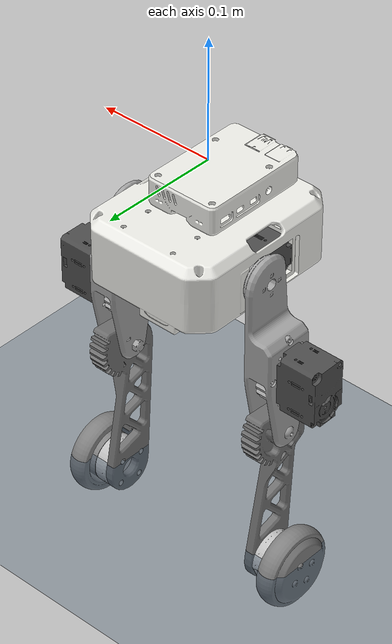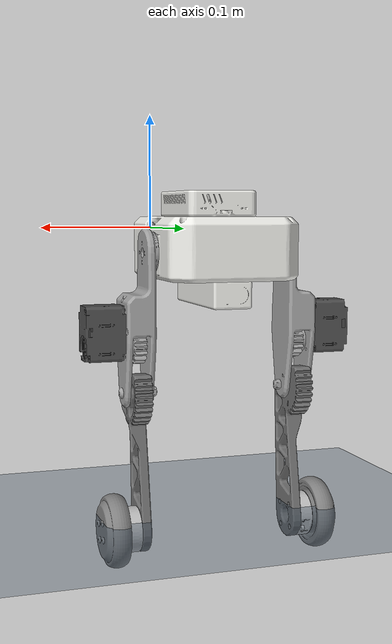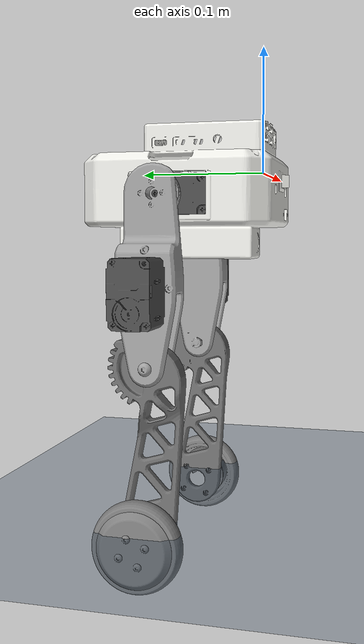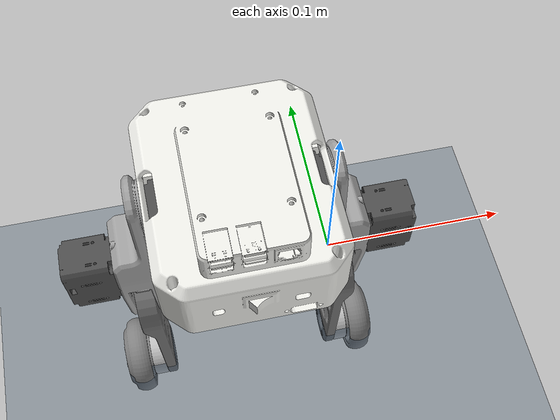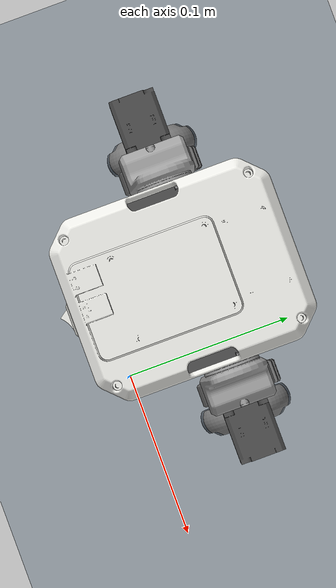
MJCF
<mujoco model="bipedal wheel scene">
  <include file="biped_wheel.xml"/>

  <statistic center="0 0 0.1" extent="0.8"/>

  <visual>
    <headlight diffuse="0.6 0.6 0.6" ambient="0.3 0.3 0.3" specular="0 0 0"/>
    <rgba haze="0.15 0.25 0.35 1"/>
    <global azimuth="-130" elevation="-20"/>
  </visual>

  <asset>
    <texture type="skybox" builtin="gradient" rgb1="0.3 0.5 0.7" rgb2="0 0 0" width="512" height="3072"/>
    <texture type="2d" name="groundplane" builtin="checker" mark="edge" rgb1="0.2 0.3 0.4" rgb2="0.1 0.2 0.3"
      markrgb="0.8 0.8 0.8" width="300" height="300"/>
    <material name="groundplane" texture="groundplane" texuniform="true" texrepeat="5 5" reflectance="0.2"/>
  </asset>

  <worldbody>
    <light pos="0 0 1.5" dir="0 0 -1" directional="true"/>
    <geom name="floor" size="0 0 0.05" type="plane" material="groundplane" pos = "0 0 -0.25"/>
  </worldbody>
</mujoco>

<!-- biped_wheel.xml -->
<mujoco model="bipedal_wheel">
  <compiler angle="radian" meshdir="../meshes/"/>

  <asset>
    <mesh name="base_link" file="base_link.STL"/>
    <mesh name="FixMotor1" file="FixMotor1.STL"/>
    <mesh name="FixMotor3" file="FixMotor3.STL"/>
    <mesh name="R1" file="R1.STL"/>
    <mesh name="FixMotor4" file="FixMotor4.STL"/>
    <mesh name="R2" file="R2.STL"/>
    <mesh name="R3" file="R3.STL"/>
    <mesh name="R4" file="R4.STL"/>
    <mesh name="L1" file="L1.STL"/>
    <mesh name="FixMotor2" file="FixMotor2.STL"/>
    <mesh name="L2" file="L2.STL"/>
    <mesh name="L3" file="L3.STL"/>
    <mesh name="L4" file="L4.STL"/>
  </asset>

  <worldbody>
    <body name="base_link">
      <inertial pos="-0.0430455 0.0467319 -0.0223114" quat="0.49877 0.501535 -0.497211 0.502467" mass="0.9138" diaginertia="0.000918252 0.000530322 0.000437595"/>
      <site name="imu" pos="0 0 0"/>
      <geom type="mesh" contype="0" conaffinity="0" group="1" density="0" rgba="0.92549 0.92549 0.90588 1" mesh="base_link"/>
      <geom type="mesh" rgba="0.92549 0.92549 0.90588 1" mesh="base_link"/>
      <geom pos="-0.092323 0.070189 -0.020612" quat="1 0 0 0" type="mesh" contype="0" conaffinity="0" group="1" density="0" rgba="0.29804 0.29804 0.29804 1" mesh="FixMotor1"/>
      <geom pos="-0.092323 0.070189 -0.020612" quat="1 0 0 0" type="mesh" rgba="0.29804 0.29804 0.29804 1" mesh="FixMotor1"/>
      <geom pos="0.0060771 0.070189 -0.020612" quat="0.707105 0 0.707108 0" type="mesh" contype="0" conaffinity="0" group="1" density="0" rgba="0.29804 0.29804 0.29804 1" mesh="FixMotor3"/>
      <geom pos="0.0060771 0.070189 -0.020612" quat="0.707105 0 0.707108 0" type="mesh" rgba="0.29804 0.29804 0.29804 1" mesh="FixMotor3"/>
      <body name="R1" pos="0.024227 0.059189 -0.020612" quat="0.707105 0 0 0.707108">
        <inertial pos="5.04629e-06 -0.0200582 -0.0616403" quat="0.99416 -0.107403 0.00950229 -0.00442741" mass="0.0988" diaginertia="9.67921e-05 8.19704e-05 3.52418e-05"/>
        <joint name="R1" pos="0 0 0" axis="0 1 0"/>
        <geom type="mesh" contype="0" conaffinity="0" group="1" density="0" rgba="0.62745 0.62745 0.62745 1" mesh="R1"/>
        <geom type="mesh" rgba="0.62745 0.62745 0.62745 1" mesh="R1"/>
        <geom pos="-0.00028834 -0.024 -0.0905" quat="0.707105 -0.707107 0.00112645 0.00112646" type="mesh" contype="0" conaffinity="0" group="1" density="0" rgba="0.29804 0.29804 0.29804 1" mesh="FixMotor4"/>
        <geom pos="-0.00028834 -0.024 -0.0905" quat="0.707105 -0.707107 0.00112645 0.00112646" type="mesh" rgba="0.29804 0.29804 0.29804 1" mesh="FixMotor4"/>
        <body name="R2" pos="-0.00038233 -0.0108 -0.12">
          <inertial pos="0.00180316 0.0014693 -0.094557" quat="0.725466 -0.0175874 0.0102784 0.687956" mass="0.0817" diaginertia="0.000211507 0.00020507 9.25785e-06"/>
          <joint name="R2" pos="0 0 0" axis="0 -1 0"/>
          <geom type="mesh" contype="0" conaffinity="0" group="1" density="0" rgba="0.43137 0.43137 0.43137 1" mesh="R2"/>
          <geom type="mesh" rgba="0.43137 0.43137 0.43137 1" mesh="R2"/>
          <geom pos="0.0024572 -0.0235 -0.11997" quat="0.350331 0.61422 0.614222 0.350333" type="mesh" contype="0" conaffinity="0" group="1" density="0" rgba="0.75294 0.75294 0.75294 1" mesh="R3"/>
          <geom pos="0.0024572 -0.0235 -0.11997" quat="0.350331 0.61422 0.614222 0.350333" type="mesh" rgba="0.75294 0.75294 0.75294 1" mesh="R3"/>
          <body name="R4" pos="0.0024572 -0.0235 -0.11997" quat="1 -2.0924e-06 3.6732e-06 9.01663e-07">
            <inertial pos="-5.703e-12 0.0065924 2.0318e-12" quat="0.707107 0 0 0.707107" mass="0.0545" diaginertia="2.4575e-05 1.3633e-05 1.3633e-05"/>
            <joint name="R4" pos="0 0 0" axis="0 1 0"/>
            <geom type="mesh" contype="0" conaffinity="0" group="1" density="0" rgba="0.50196 0.50196 0.50196 1" mesh="R4"/>
            <geom type="mesh" rgba="0.50196 0.50196 0.50196 1" mesh="R4"/>
          </body>
        </body>
      </body>
      <body name="L1" pos="-0.11057 0.059189 -0.020612" quat="0.707105 0 0 0.707108">
        <inertial pos="-0.000122144 0.020055 -0.0616402" quat="0.994142 0.10746 0.0103632 0.00516376" mass="0.0988" diaginertia="9.68031e-05 8.19712e-05 3.52522e-05"/>
        <joint name="L1" pos="0 0 0" axis="0 1 0"/>
        <geom type="mesh" contype="0" conaffinity="0" group="1" density="0" rgba="0.62745 0.62745 0.62745 1" mesh="L1"/>
        <geom type="mesh" rgba="0.62745 0.62745 0.62745 1" mesh="L1"/>
        <geom pos="-0.00044938 0.024 -0.090499" quat="0.00175297 0.00175816 -0.707106 0.707103" type="mesh" contype="0" conaffinity="0" group="1" density="0" rgba="0.29804 0.29804 0.29804 1" mesh="FixMotor2"/>
        <geom pos="-0.00044938 0.024 -0.090499" quat="0.00175297 0.00175816 -0.707106 0.707103" type="mesh" rgba="0.29804 0.29804 0.29804 1" mesh="FixMotor2"/>
        <body name="L2" pos="-0.00059586 0.0108 -0.12">
          <inertial pos="0.00202464 -0.0014693 -0.0946588" quat="0.690032 0.009635 -0.0182278 0.723485" mass="0.0817" diaginertia="0.00021192 0.000205525 9.21289e-06"/>
          <joint name="L2" pos="0 0 0" axis="0 -1 0"/>
          <geom type="mesh" contype="0" conaffinity="0" group="1" density="0" rgba="0.43137 0.43137 0.43137 1" mesh="L2"/>
          <geom type="mesh" rgba="0.43137 0.43137 0.43137 1" mesh="L2"/>
          <geom pos="0.0031907 0.0235 -0.11996" quat="0.142764 0.692544 -0.692546 -0.142764" type="mesh" contype="0" conaffinity="0" group="1" density="0" rgba="0.75294 0.75294 0.75294 1" mesh="L3"/>
          <geom pos="0.0031907 0.0235 -0.11996" quat="0.142764 0.692544 -0.692546 -0.142764" type="mesh" rgba="0.75294 0.75294 0.75294 1" mesh="L3"/>
          <body name="L4" pos="0.0031907 0.0235 -0.11996" quat="-1 -4.39955e-06 -6.32679e-06 1.4975e-07">
            <inertial pos="3.8845e-12 -0.0065924 -5.6056e-12" quat="0.707107 0 0 0.707107" mass="0.0545" diaginertia="2.4575e-05 1.3633e-05 1.3633e-05"/>
            <joint name="L4" pos="0 0 0" axis="0 1 0"/>
            <geom type="mesh" contype="0" conaffinity="0" group="1" density="0" rgba="0.50196 0.50196 0.50196 1" mesh="L4"/>
            <geom type="mesh" rgba="0.50196 0.50196 0.50196 1" mesh="L4"/>
          </body>
        </body>
      </body>
    </body>
  </worldbody>

  <actuator>
    <motor name = "r_hip"  joint = "R1"  />
    <motor name = "l_hip" joint = "L1" />
    <motor name = "r_thigh"  joint = "R2" />
    <motor name = "l_thigh" joint = "L2"/>
    <motor name = "r_wheel"  joint = "R4"  ctrlrange="-5 5"/>
    <motor name = "l_wheel" joint = "L4" ctrlrange="-5 5"/>
  </actuator>

  <sensor>
    <jointpos name="right1_pos" joint="R1" />
    <jointpos name="left1_pos"  joint="L1" />
    <jointpos name="right2_pos" joint="R2" />
    <jointpos name="left2_pos"  joint="L2" />
    <jointpos name="right3_pos" joint="R4" />
    <jointpos name="left3_pos"  joint="L4" />

    <jointvel name="right1_vel" joint="R1" />
    <jointvel name="left1_vel"  joint="L1" />
    <jointvel name="right2_vel" joint="R2" />
    <jointvel name="left2_vel"  joint="L2" />
    <jointvel name="right3_vel" joint="R4" />
    <jointvel name="left3_vel"  joint="L4" />

    <jointactuatorfrc name="right1_torque" joint="R1" />
    <jointactuatorfrc name="left1_torque"  joint="L1" />
    <jointactuatorfrc name="right2_torque" joint="R2" />
    <jointactuatorfrc name="left2_torque"  joint="L2" />
    <jointactuatorfrc name="right3_torque" joint="R4" />
    <jointactuatorfrc name="left3_torque"  joint="L4" />

    <framequat name="imu_quat" objtype="site" objname="imu" />
    <gyro name="imu_gyro" site="imu" />
    <accelerometer name="imu_acc" site="imu" />

    <framepos name="frame_pos" objtype="site" objname="imu" />
    <framelinvel name="frame_vel" objtype="site" objname="imu" />
  </sensor>
</mujoco>
